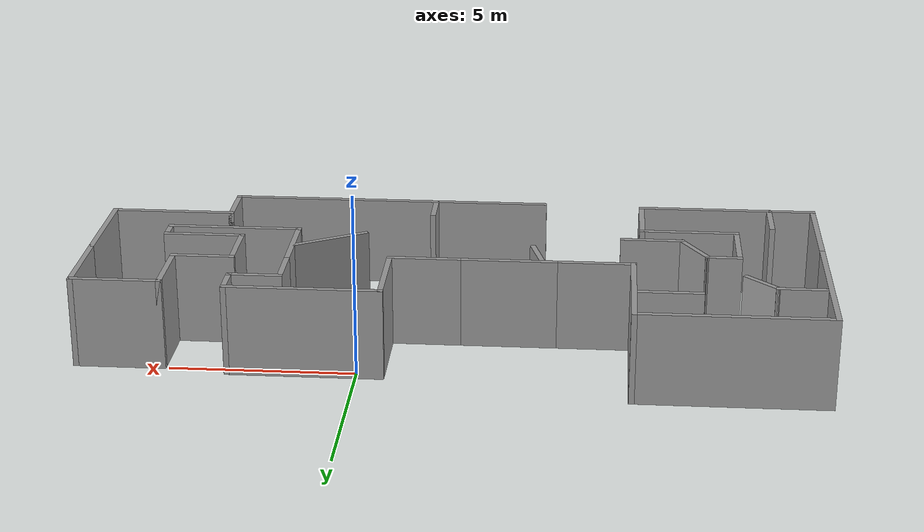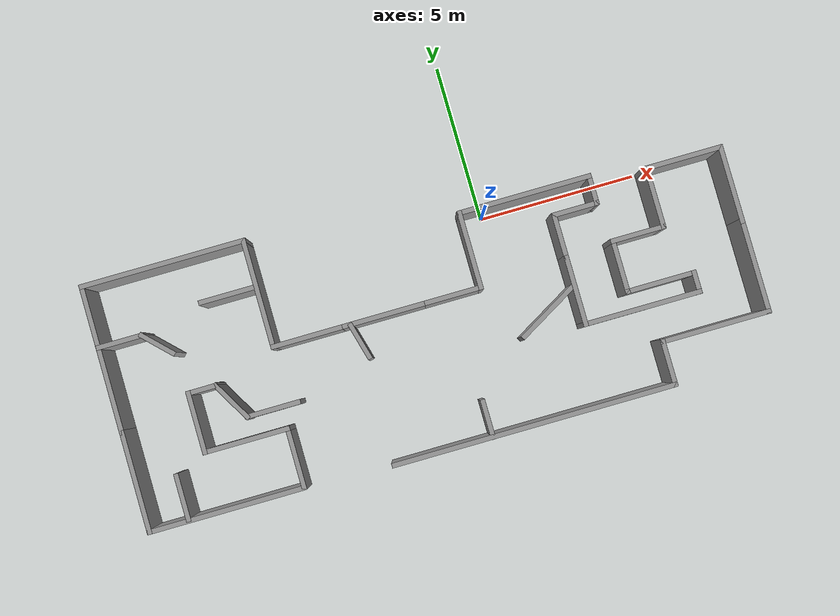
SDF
<?xml version='1.0'?>
<sdf version='1.7'>
  <model name='building_model'>
    <pose>-2.415 -2.70167 0 0 -0 0</pose>
    <link name='Wall_10'>
      <collision name='Wall_10_Collision'>
        <geometry>
          <box>
            <size>2.5 0.15 2.5</size>
          </box>
        </geometry>
        <pose>0 0 1.25 0 -0 0</pose>
      </collision>
      <visual name='Wall_10_Visual'>
        <pose>0 0 1.25 0 -0 0</pose>
        <geometry>
          <box>
            <size>2.5 0.15 2.5</size>
          </box>
        </geometry>
        <material>
          <script>
            <uri>file://media/materials/scripts/gazebo.material</uri>
            <name>Gazebo/Grey</name>
          </script>
          <ambient>1 1 1 1</ambient>
        </material>
        <meta>
          <layer>0</layer>
        </meta>
      </visual>
      <pose>8.75 2.65167 0 0 -0 3.14159</pose>
    </link>
    <link name='Wall_11'>
      <collision name='Wall_11_Collision'>
        <geometry>
          <box>
            <size>2 0.15 2.5</size>
          </box>
        </geometry>
        <pose>0 0 1.25 0 -0 0</pose>
      </collision>
      <visual name='Wall_11_Visual'>
        <pose>0 0 1.25 0 -0 0</pose>
        <geometry>
          <box>
            <size>2 0.15 2.5</size>
          </box>
        </geometry>
        <material>
          <script>
            <uri>file://media/materials/scripts/gazebo.material</uri>
            <name>Gazebo/Grey</name>
          </script>
          <ambient>1 1 1 1</ambient>
        </material>
        <meta>
          <layer>0</layer>
        </meta>
      </visual>
      <pose>7.575 1.72667 0 0 -0 -1.5708</pose>
    </link>
    <link name='Wall_12'>
      <collision name='Wall_12_Collision'>
        <geometry>
          <box>
            <size>1.75 0.15 2.5</size>
          </box>
        </geometry>
        <pose>0 0 1.25 0 -0 0</pose>
      </collision>
      <visual name='Wall_12_Visual'>
        <pose>0 0 1.25 0 -0 0</pose>
        <geometry>
          <box>
            <size>1.75 0.15 2.5</size>
          </box>
        </geometry>
        <material>
          <script>
            <uri>file://media/materials/scripts/gazebo.material</uri>
            <name>Gazebo/Grey</name>
          </script>
          <ambient>1 1 1 1</ambient>
        </material>
        <meta>
          <layer>0</layer>
        </meta>
      </visual>
      <pose>6.775 0.801673 0 0 -0 3.14159</pose>
    </link>
    <link name='Wall_13'>
      <collision name='Wall_13_Collision'>
        <geometry>
          <box>
            <size>1.75 0.15 2.5</size>
          </box>
        </geometry>
        <pose>0 0 1.25 0 -0 0</pose>
      </collision>
      <visual name='Wall_13_Visual'>
        <pose>0 0 1.25 0 -0 0</pose>
        <geometry>
          <box>
            <size>1.75 0.15 2.5</size>
          </box>
        </geometry>
        <material>
          <script>
            <uri>file://media/materials/scripts/gazebo.material</uri>
            <name>Gazebo/Grey</name>
          </script>
          <ambient>1 1 1 1</ambient>
        </material>
        <meta>
          <layer>0</layer>
        </meta>
      </visual>
      <pose>5.975 0.001673 0 0 -0 -1.5708</pose>
    </link>
    <link name='Wall_14'>
      <collision name='Wall_14_Collision'>
        <geometry>
          <box>
            <size>2.25 0.15 2.5</size>
          </box>
        </geometry>
        <pose>0 0 1.25 0 -0 0</pose>
      </collision>
      <visual name='Wall_14_Visual'>
        <pose>0 0 1.25 0 -0 0</pose>
        <geometry>
          <box>
            <size>2.25 0.15 2.5</size>
          </box>
        </geometry>
        <material>
          <script>
            <uri>file://media/materials/scripts/gazebo.material</uri>
            <name>Gazebo/Grey</name>
          </script>
          <ambient>1 1 1 1</ambient>
        </material>
        <meta>
          <layer>0</layer>
        </meta>
      </visual>
      <pose>7.025 -0.798327 0 0 -0 0</pose>
    </link>
    <link name='Wall_15'>
      <collision name='Wall_15_Collision'>
        <geometry>
          <box>
            <size>0.75 0.15 2.5</size>
          </box>
        </geometry>
        <pose>0 0 1.25 0 -0 0</pose>
      </collision>
      <visual name='Wall_15_Visual'>
        <pose>0 0 1.25 0 -0 0</pose>
        <geometry>
          <box>
            <size>0.75 0.15 2.5</size>
          </box>
        </geometry>
        <material>
          <script>
            <uri>file://media/materials/scripts/gazebo.material</uri>
            <name>Gazebo/Grey</name>
          </script>
          <ambient>1 1 1 1</ambient>
        </material>
        <meta>
          <layer>0</layer>
        </meta>
      </visual>
      <pose>8.075 -1.09833 0 0 -0 -1.5708</pose>
    </link>
    <link name='Wall_16'>
      <collision name='Wall_16_Collision'>
        <geometry>
          <box>
            <size>3.75 0.15 2.5</size>
          </box>
        </geometry>
        <pose>0 0 1.25 0 -0 0</pose>
      </collision>
      <visual name='Wall_16_Visual'>
        <pose>0 0 1.25 0 -0 0</pose>
        <geometry>
          <box>
            <size>3.75 0.15 2.5</size>
          </box>
        </geometry>
        <material>
          <script>
            <uri>file://media/materials/scripts/gazebo.material</uri>
            <name>Gazebo/Grey</name>
          </script>
          <ambient>1 1 1 1</ambient>
        </material>
        <meta>
          <layer>0</layer>
        </meta>
      </visual>
      <pose>6.275 -1.39833 0 0 -0 3.14159</pose>
    </link>
    <link name='Wall_17'>
      <collision name='Wall_17_Collision'>
        <geometry>
          <box>
            <size>2.25 0.15 2.5</size>
          </box>
        </geometry>
        <pose>0 0 1.25 0 -0 0</pose>
      </collision>
      <visual name='Wall_17_Visual'>
        <pose>0 0 1.25 0 -0 0</pose>
        <geometry>
          <box>
            <size>2.25 0.15 2.5</size>
          </box>
        </geometry>
        <material>
          <script>
            <uri>file://media/materials/scripts/gazebo.material</uri>
            <name>Gazebo/Grey</name>
          </script>
          <ambient>1 1 1 1</ambient>
        </material>
        <meta>
          <layer>0</layer>
        </meta>
      </visual>
      <pose>4.475 -0.348327 0 0 -0 1.5708</pose>
    </link>
    <link name='Wall_18'>
      <collision name='Wall_18_Collision'>
        <geometry>
          <box>
            <size>1.5 0.15 2.5</size>
          </box>
        </geometry>
        <pose>0 0 1.25 0 -0 0</pose>
      </collision>
      <visual name='Wall_18_Visual'>
        <pose>0 0 1.25 0 -0 0</pose>
        <geometry>
          <box>
            <size>1.5 0.15 2.5</size>
          </box>
        </geometry>
        <material>
          <script>
            <uri>file://media/materials/scripts/gazebo.material</uri>
            <name>Gazebo/Grey</name>
          </script>
          <ambient>1 1 1 1</ambient>
        </material>
        <meta>
          <layer>0</layer>
        </meta>
      </visual>
      <pose>4.475 1.37667 0 0 -0 1.5708</pose>
    </link>
    <link name='Wall_19'>
      <collision name='Wall_19_Collision'>
        <geometry>
          <box>
            <size>1.5 0.15 2.5</size>
          </box>
        </geometry>
        <pose>0 0 1.25 0 -0 0</pose>
      </collision>
      <visual name='Wall_19_Visual'>
        <pose>0 0 1.25 0 -0 0</pose>
        <geometry>
          <box>
            <size>1.5 0.15 2.5</size>
          </box>
        </geometry>
        <material>
          <script>
            <uri>file://media/materials/scripts/gazebo.material</uri>
            <name>Gazebo/Grey</name>
          </script>
          <ambient>1 1 1 1</ambient>
        </material>
        <meta>
          <layer>0</layer>
        </meta>
      </visual>
      <pose>5.15 2.05167 0 0 -0 0</pose>
    </link>
    <link name='Wall_20'>
      <collision name='Wall_20_Collision'>
        <geometry>
          <box>
            <size>1 0.15 2.5</size>
          </box>
        </geometry>
        <pose>0 0 1.25 0 -0 0</pose>
      </collision>
      <visual name='Wall_20_Visual'>
        <pose>0 0 1.25 0 -0 0</pose>
        <geometry>
          <box>
            <size>1 0.15 2.5</size>
          </box>
        </geometry>
        <material>
          <script>
            <uri>file://media/materials/scripts/gazebo.material</uri>
            <name>Gazebo/Grey</name>
          </script>
          <ambient>1 1 1 1</ambient>
        </material>
        <meta>
          <layer>0</layer>
        </meta>
      </visual>
      <pose>5.825 2.47667 0 0 -0 1.5708</pose>
    </link>
    <link name='Wall_21'>
      <collision name='Wall_21_Collision'>
        <geometry>
          <box>
            <size>4.25 0.15 2.5</size>
          </box>
        </geometry>
        <pose>0 0 1.25 0 -0 0</pose>
      </collision>
      <visual name='Wall_21_Visual'>
        <pose>0 0 1.25 0 -0 0</pose>
        <geometry>
          <box>
            <size>4.25 0.15 2.5</size>
          </box>
        </geometry>
        <material>
          <script>
            <uri>file://media/materials/scripts/gazebo.material</uri>
            <name>Gazebo/Grey</name>
          </script>
          <ambient>1 1 1 1</ambient>
        </material>
        <meta>
          <layer>0</layer>
        </meta>
      </visual>
      <pose>3.775 2.90167 0 0 -0 3.14159</pose>
    </link>
    <link name='Wall_22'>
      <collision name='Wall_22_Collision'>
        <geometry>
          <box>
            <size>2.5 0.15 2.5</size>
          </box>
        </geometry>
        <pose>0 0 1.25 0 -0 0</pose>
      </collision>
      <visual name='Wall_22_Visual'>
        <pose>0 0 1.25 0 -0 0</pose>
        <geometry>
          <box>
            <size>2.5 0.15 2.5</size>
          </box>
        </geometry>
        <material>
          <script>
            <uri>file://media/materials/scripts/gazebo.material</uri>
            <name>Gazebo/Grey</name>
          </script>
          <ambient>1 1 1 1</ambient>
        </material>
        <meta>
          <layer>0</layer>
        </meta>
      </visual>
      <pose>1.725 1.72667 0 0 -0 -1.5708</pose>
    </link>
    <link name='Wall_23'>
      <collision name='Wall_23_Collision'>
        <geometry>
          <box>
            <size>2 0.15 2.5</size>
          </box>
        </geometry>
        <pose>0 0 1.25 0 -0 0</pose>
      </collision>
      <visual name='Wall_23_Visual'>
        <pose>0 0 1.25 0 -0 0</pose>
        <geometry>
          <box>
            <size>2 0.15 2.5</size>
          </box>
        </geometry>
        <material>
          <script>
            <uri>file://media/materials/scripts/gazebo.material</uri>
            <name>Gazebo/Grey</name>
          </script>
          <ambient>1 1 1 1</ambient>
        </material>
        <meta>
          <layer>0</layer>
        </meta>
      </visual>
      <pose>0.8 0.551673 0 0 -0 3.14159</pose>
    </link>
    <link name='Wall_24'>
      <collision name='Wall_24_Collision'>
        <geometry>
          <box>
            <size>2.75 0.15 2.5</size>
          </box>
        </geometry>
        <pose>0 0 1.25 0 -0 0</pose>
      </collision>
      <visual name='Wall_24_Visual'>
        <pose>0 0 1.25 0 -0 0</pose>
        <geometry>
          <box>
            <size>2.75 0.15 2.5</size>
          </box>
        </geometry>
        <material>
          <script>
            <uri>file://media/materials/scripts/gazebo.material</uri>
            <name>Gazebo/Grey</name>
          </script>
          <ambient>1 1 1 1</ambient>
        </material>
        <meta>
          <layer>0</layer>
        </meta>
      </visual>
      <pose>-1.425 0.551673 0 0 -0 3.14159</pose>
    </link>
    <link name='Wall_25'>
      <collision name='Wall_25_Collision'>
        <geometry>
          <box>
            <size>2.25 0.15 2.5</size>
          </box>
        </geometry>
        <pose>0 0 1.25 0 -0 0</pose>
      </collision>
      <visual name='Wall_25_Visual'>
        <pose>0 0 1.25 0 -0 0</pose>
        <geometry>
          <box>
            <size>2.25 0.15 2.5</size>
          </box>
        </geometry>
        <material>
          <script>
            <uri>file://media/materials/scripts/gazebo.material</uri>
            <name>Gazebo/Grey</name>
          </script>
          <ambient>1 1 1 1</ambient>
        </material>
        <meta>
          <layer>0</layer>
        </meta>
      </visual>
      <pose>-3.775 0.551673 0 0 -0 3.14159</pose>
    </link>
    <link name='Wall_26'>
      <collision name='Wall_26_Collision'>
        <geometry>
          <box>
            <size>3.5 0.15 2.5</size>
          </box>
        </geometry>
        <pose>0 0 1.25 0 -0 0</pose>
      </collision>
      <visual name='Wall_26_Visual'>
        <pose>0 0 1.25 0 -0 0</pose>
        <geometry>
          <box>
            <size>3.5 0.15 2.5</size>
          </box>
        </geometry>
        <material>
          <script>
            <uri>file://media/materials/scripts/gazebo.material</uri>
            <name>Gazebo/Grey</name>
          </script>
          <ambient>1 1 1 1</ambient>
        </material>
        <meta>
          <layer>0</layer>
        </meta>
      </visual>
      <pose>-4.825 2.22667 0 0 -0 1.5708</pose>
    </link>
    <link name='Wall_27'>
      <collision name='Wall_27_Collision'>
        <geometry>
          <box>
            <size>5.25 0.15 2.5</size>
          </box>
        </geometry>
        <pose>0 0 1.25 0 -0 0</pose>
      </collision>
      <visual name='Wall_27_Visual'>
        <pose>0 0 1.25 0 -0 0</pose>
        <geometry>
          <box>
            <size>5.25 0.15 2.5</size>
          </box>
        </geometry>
        <material>
          <script>
            <uri>file://media/materials/scripts/gazebo.material</uri>
            <name>Gazebo/Grey</name>
          </script>
          <ambient>1 1 1 1</ambient>
        </material>
        <meta>
          <layer>0</layer>
        </meta>
      </visual>
      <pose>-7.375 3.90167 0 0 -0 3.14159</pose>
    </link>
    <link name='Wall_28'>
      <collision name='Wall_28_Collision'>
        <geometry>
          <box>
            <size>4.75 0.15 2.5</size>
          </box>
        </geometry>
        <pose>0 0 1.25 0 -0 0</pose>
      </collision>
      <visual name='Wall_28_Visual'>
        <pose>0 0 1.25 0 -0 0</pose>
        <geometry>
          <box>
            <size>4.75 0.15 2.5</size>
          </box>
        </geometry>
        <material>
          <script>
            <uri>file://media/materials/scripts/gazebo.material</uri>
            <name>Gazebo/Grey</name>
          </script>
          <ambient>1 1 1 1</ambient>
        </material>
        <meta>
          <layer>0</layer>
        </meta>
      </visual>
      <pose>-9.925 1.60167 0 0 -0 -1.5708</pose>
    </link>
    <link name='Wall_29'>
      <collision name='Wall_29_Collision'>
        <geometry>
          <box>
            <size>3.25 0.15 2.5</size>
          </box>
        </geometry>
        <pose>0 0 1.25 0 -0 0</pose>
      </collision>
      <visual name='Wall_29_Visual'>
        <pose>0 0 1.25 0 -0 0</pose>
        <geometry>
          <box>
            <size>3.25 0.15 2.5</size>
          </box>
        </geometry>
        <material>
          <script>
            <uri>file://media/materials/scripts/gazebo.material</uri>
            <name>Gazebo/Grey</name>
          </script>
          <ambient>1 1 1 1</ambient>
        </material>
        <meta>
          <layer>0</layer>
        </meta>
      </visual>
      <pose>-9.925 -2.24833 0 0 -0 -1.5708</pose>
    </link>
    <link name='Wall_30'>
      <collision name='Wall_30_Collision'>
        <geometry>
          <box>
            <size>5 0.15 2.5</size>
          </box>
        </geometry>
        <pose>0 0 1.25 0 -0 0</pose>
      </collision>
      <visual name='Wall_30_Visual'>
        <pose>0 0 1.25 0 -0 0</pose>
        <geometry>
          <box>
            <size>5 0.15 2.5</size>
          </box>
        </geometry>
        <material>
          <script>
            <uri>file://media/materials/scripts/gazebo.material</uri>
            <name>Gazebo/Grey</name>
          </script>
          <ambient>1 1 1 1</ambient>
        </material>
        <meta>
          <layer>0</layer>
        </meta>
      </visual>
      <pose>-7.5 -3.79833 0 0 -0 0</pose>
    </link>
    <link name='Wall_31'>
      <collision name='Wall_31_Collision'>
        <geometry>
          <box>
            <size>2 0.15 2.5</size>
          </box>
        </geometry>
        <pose>0 0 1.25 0 -0 0</pose>
      </collision>
      <visual name='Wall_31_Visual'>
        <pose>0 0 1.25 0 -0 0</pose>
        <geometry>
          <box>
            <size>2 0.15 2.5</size>
          </box>
        </geometry>
        <material>
          <script>
            <uri>file://media/materials/scripts/gazebo.material</uri>
            <name>Gazebo/Grey</name>
          </script>
          <ambient>1 1 1 1</ambient>
        </material>
        <meta>
          <layer>0</layer>
        </meta>
      </visual>
      <pose>-5.075 -2.87333 0 0 -0 1.5708</pose>
    </link>
    <link name='Wall_32'>
      <collision name='Wall_32_Collision'>
        <geometry>
          <box>
            <size>2.75 0.15 2.5</size>
          </box>
        </geometry>
        <pose>0 0 1.25 0 -0 0</pose>
      </collision>
      <visual name='Wall_32_Visual'>
        <pose>0 0 1.25 0 -0 0</pose>
        <geometry>
          <box>
            <size>2.75 0.15 2.5</size>
          </box>
        </geometry>
        <material>
          <script>
            <uri>file://media/materials/scripts/gazebo.material</uri>
            <name>Gazebo/Grey</name>
          </script>
          <ambient>1 1 1 1</ambient>
        </material>
        <meta>
          <layer>0</layer>
        </meta>
      </visual>
      <pose>-6.375 -1.94833 0 0 -0 3.14159</pose>
    </link>
    <link name='Wall_33'>
      <collision name='Wall_33_Collision'>
        <geometry>
          <box>
            <size>2 0.15 2.5</size>
          </box>
        </geometry>
        <pose>0 0 1.25 0 -0 0</pose>
      </collision>
      <visual name='Wall_33_Visual'>
        <pose>0 0 1.25 0 -0 0</pose>
        <geometry>
          <box>
            <size>2 0.15 2.5</size>
          </box>
        </geometry>
        <material>
          <script>
            <uri>file://media/materials/scripts/gazebo.material</uri>
            <name>Gazebo/Grey</name>
          </script>
          <ambient>1 1 1 1</ambient>
        </material>
        <meta>
          <layer>0</layer>
        </meta>
      </visual>
      <pose>-7.675 -1.02333 0 0 -0 1.5708</pose>
    </link>
    <link name='Wall_34'>
      <collision name='Wall_34_Collision'>
        <geometry>
          <box>
            <size>1 0.15 2.5</size>
          </box>
        </geometry>
        <pose>0 0 1.25 0 -0 0</pose>
      </collision>
      <visual name='Wall_34_Visual'>
        <pose>0 0 1.25 0 -0 0</pose>
        <geometry>
          <box>
            <size>1 0.15 2.5</size>
          </box>
        </geometry>
        <material>
          <script>
            <uri>file://media/materials/scripts/gazebo.material</uri>
            <name>Gazebo/Grey</name>
          </script>
          <ambient>1 1 1 1</ambient>
        </material>
        <meta>
          <layer>0</layer>
        </meta>
      </visual>
      <pose>-7.25 -0.098327 0 0 -0 0</pose>
    </link>
    <link name='Wall_35'>
      <collision name='Wall_35_Collision'>
        <geometry>
          <box>
            <size>1.5 0.15 2.5</size>
          </box>
        </geometry>
        <pose>0 0 1.25 0 -0 0</pose>
      </collision>
      <visual name='Wall_35_Visual'>
        <pose>0 0 1.25 0 -0 0</pose>
        <geometry>
          <box>
            <size>1.5 0.15 2.5</size>
          </box>
        </geometry>
        <material>
          <script>
            <uri>file://media/materials/scripts/gazebo.material</uri>
            <name>Gazebo/Grey</name>
          </script>
          <ambient>1 1 1 1</ambient>
        </material>
        <meta>
          <layer>0</layer>
        </meta>
      </visual>
      <pose>-6.4875 -0.682894 0 0 -0 -1.0472</pose>
    </link>
    <link name='Wall_36'>
      <collision name='Wall_36_Collision'>
        <geometry>
          <box>
            <size>1.75 0.15 2.5</size>
          </box>
        </geometry>
        <pose>0 0 1.25 0 -0 0</pose>
      </collision>
      <visual name='Wall_36_Visual'>
        <pose>0 0 1.25 0 -0 0</pose>
        <geometry>
          <box>
            <size>1.75 0.15 2.5</size>
          </box>
        </geometry>
        <material>
          <script>
            <uri>file://media/materials/scripts/gazebo.material</uri>
            <name>Gazebo/Grey</name>
          </script>
          <ambient>1 1 1 1</ambient>
        </material>
        <meta>
          <layer>0</layer>
        </meta>
      </visual>
      <pose>-5.35 -1.26746 0 0 -0 0</pose>
    </link>
    <link name='Wall_38'>
      <collision name='Wall_38_Collision'>
        <geometry>
          <box>
            <size>1.25 0.15 2.5</size>
          </box>
        </geometry>
        <pose>0 0 1.25 0 -0 0</pose>
      </collision>
      <visual name='Wall_38_Visual'>
        <pose>0 0 1.25 0 -0 0</pose>
        <geometry>
          <box>
            <size>1.25 0.15 2.5</size>
          </box>
        </geometry>
        <material>
          <script>
            <uri>file://media/materials/scripts/gazebo.material</uri>
            <name>Gazebo/Grey</name>
          </script>
          <ambient>1 1 1 1</ambient>
        </material>
        <meta>
          <layer>0</layer>
        </meta>
      </visual>
      <pose>0.829393 -3.35167 0 0 -0 1.5708</pose>
    </link>
    <link name='Wall_4'>
      <collision name='Wall_4_Collision'>
        <geometry>
          <box>
            <size>9 0.15 2.5</size>
          </box>
        </geometry>
        <pose>0 0 1.25 0 -0 0</pose>
      </collision>
      <visual name='Wall_4_Visual'>
        <pose>0 0 1.25 0 -0 0</pose>
        <geometry>
          <box>
            <size>9 0.15 2.5</size>
          </box>
        </geometry>
        <material>
          <script>
            <uri>file://media/materials/scripts/gazebo.material</uri>
            <name>Gazebo/Grey</name>
          </script>
          <ambient>1 1 1 1</ambient>
        </material>
        <meta>
          <layer>0</layer>
        </meta>
      </visual>
      <pose>2.15 -3.89833 0 0 -0 3.14159</pose>
    </link>
    <link name='Wall_40'>
      <collision name='Wall_40_Collision'>
        <geometry>
          <box>
            <size>1.25 0.15 2.5</size>
          </box>
        </geometry>
        <pose>0 0 1.25 0 -0 0</pose>
      </collision>
      <visual name='Wall_40_Visual'>
        <pose>0 0 1.25 0 -0 0</pose>
        <geometry>
          <box>
            <size>1.25 0.15 2.5</size>
          </box>
        </geometry>
        <material>
          <script>
            <uri>file://media/materials/scripts/gazebo.material</uri>
            <name>Gazebo/Grey</name>
          </script>
          <ambient>1 1 1 1</ambient>
        </material>
        <meta>
          <layer>0</layer>
        </meta>
      </visual>
      <pose>-2.24458 -0.010492 0 0 -0 -1.309</pose>
    </link>
    <link name='Wall_42'>
      <collision name='Wall_42_Collision'>
        <geometry>
          <box>
            <size>1.5 0.15 2.5</size>
          </box>
        </geometry>
        <pose>0 0 1.25 0 -0 0</pose>
      </collision>
      <visual name='Wall_42_Visual'>
        <pose>0 0 1.25 0 -0 0</pose>
        <geometry>
          <box>
            <size>1.5 0.15 2.5</size>
          </box>
        </geometry>
        <material>
          <script>
            <uri>file://media/materials/scripts/gazebo.material</uri>
            <name>Gazebo/Grey</name>
          </script>
          <ambient>1 1 1 1</ambient>
        </material>
        <meta>
          <layer>0</layer>
        </meta>
      </visual>
      <pose>-9.24489 1.98081 0 0 -0 0</pose>
    </link>
    <link name='Wall_43'>
      <collision name='Wall_43_Collision'>
        <geometry>
          <box>
            <size>1.25 0.15 2.5</size>
          </box>
        </geometry>
        <pose>0 0 1.25 0 -0 0</pose>
      </collision>
      <visual name='Wall_43_Visual'>
        <pose>0 0 1.25 0 -0 0</pose>
        <geometry>
          <box>
            <size>1.25 0.15 2.5</size>
          </box>
        </geometry>
        <material>
          <script>
            <uri>file://media/materials/scripts/gazebo.material</uri>
            <name>Gazebo/Grey</name>
          </script>
          <ambient>1 1 1 1</ambient>
        </material>
        <meta>
          <layer>0</layer>
        </meta>
      </visual>
      <pose>-8.18098 1.5919 0 0 -0 -0.785398</pose>
    </link>
    <link name='Wall_45'>
      <collision name='Wall_45_Collision'>
        <geometry>
          <box>
            <size>1.5 0.15 2.5</size>
          </box>
        </geometry>
        <pose>0 0 1.25 0 -0 0</pose>
      </collision>
      <visual name='Wall_45_Visual'>
        <pose>0 0 1.25 0 -0 0</pose>
        <geometry>
          <box>
            <size>1.5 0.15 2.5</size>
          </box>
        </geometry>
        <material>
          <script>
            <uri>file://media/materials/scripts/gazebo.material</uri>
            <name>Gazebo/Grey</name>
          </script>
          <ambient>1 1 1 1</ambient>
        </material>
        <meta>
          <layer>0</layer>
        </meta>
      </visual>
      <pose>-8.69261 -3.07855 0 0 -0 1.5708</pose>
    </link>
    <link name='Wall_47'>
      <collision name='Wall_47_Collision'>
        <geometry>
          <box>
            <size>1.75 0.15 2.5</size>
          </box>
        </geometry>
        <pose>0 0 1.25 0 -0 0</pose>
      </collision>
      <visual name='Wall_47_Visual'>
        <pose>0 0 1.25 0 -0 0</pose>
        <geometry>
          <box>
            <size>1.75 0.15 2.5</size>
          </box>
        </geometry>
        <material>
          <script>
            <uri>file://media/materials/scripts/gazebo.material</uri>
            <name>Gazebo/Grey</name>
          </script>
          <ambient>1 1 1 1</ambient>
        </material>
        <meta>
          <layer>0</layer>
        </meta>
      </visual>
      <pose>-5.76845 2.44633 0 0 -0 3.14159</pose>
    </link>
    <link name='Wall_49'>
      <collision name='Wall_49_Collision'>
        <geometry>
          <box>
            <size>2.25 0.15 2.5</size>
          </box>
        </geometry>
        <pose>0 0 1.25 0 -0 0</pose>
      </collision>
      <visual name='Wall_49_Visual'>
        <pose>0 0 1.25 0 -0 0</pose>
        <geometry>
          <box>
            <size>2.25 0.15 2.5</size>
          </box>
        </geometry>
        <material>
          <script>
            <uri>file://media/materials/scripts/gazebo.material</uri>
            <name>Gazebo/Grey</name>
          </script>
          <ambient>1 1 1 1</ambient>
        </material>
        <meta>
          <layer>0</layer>
        </meta>
      </visual>
      <pose>3.49611 -0.723673 0 0 -0 -2.61799</pose>
    </link>
    <link name='Wall_6'>
      <collision name='Wall_6_Collision'>
        <geometry>
          <box>
            <size>1.5 0.15 2.5</size>
          </box>
        </geometry>
        <pose>0 0 1.25 0 -0 0</pose>
      </collision>
      <visual name='Wall_6_Visual'>
        <pose>0 0 1.25 0 -0 0</pose>
        <geometry>
          <box>
            <size>1.5 0.15 2.5</size>
          </box>
        </geometry>
        <material>
          <script>
            <uri>file://media/materials/scripts/gazebo.material</uri>
            <name>Gazebo/Grey</name>
          </script>
          <ambient>1 1 1 1</ambient>
        </material>
        <meta>
          <layer>0</layer>
        </meta>
      </visual>
      <pose>6.575 -3.22333 0 0 -0 1.5708</pose>
    </link>
    <link name='Wall_7'>
      <collision name='Wall_7_Collision'>
        <geometry>
          <box>
            <size>3.5 0.15 2.5</size>
          </box>
        </geometry>
        <pose>0 0 1.25 0 -0 0</pose>
      </collision>
      <visual name='Wall_7_Visual'>
        <pose>0 0 1.25 0 -0 0</pose>
        <geometry>
          <box>
            <size>3.5 0.15 2.5</size>
          </box>
        </geometry>
        <material>
          <script>
            <uri>file://media/materials/scripts/gazebo.material</uri>
            <name>Gazebo/Grey</name>
          </script>
          <ambient>1 1 1 1</ambient>
        </material>
        <meta>
          <layer>0</layer>
        </meta>
      </visual>
      <pose>8.25 -2.54833 0 0 -0 0</pose>
    </link>
    <link name='Wall_8'>
      <collision name='Wall_8_Collision'>
        <geometry>
          <box>
            <size>3 0.15 2.5</size>
          </box>
        </geometry>
        <pose>0 0 1.25 0 -0 0</pose>
      </collision>
      <visual name='Wall_8_Visual'>
        <pose>0 0 1.25 0 -0 0</pose>
        <geometry>
          <box>
            <size>3 0.15 2.5</size>
          </box>
        </geometry>
        <material>
          <script>
            <uri>file://media/materials/scripts/gazebo.material</uri>
            <name>Gazebo/Grey</name>
          </script>
          <ambient>1 1 1 1</ambient>
        </material>
        <meta>
          <layer>0</layer>
        </meta>
      </visual>
      <pose>9.925 -1.12333 0 0 -0 1.5708</pose>
    </link>
    <link name='Wall_9'>
      <collision name='Wall_9_Collision'>
        <geometry>
          <box>
            <size>2.5 0.15 2.5</size>
          </box>
        </geometry>
        <pose>0 0 1.25 0 -0 0</pose>
      </collision>
      <visual name='Wall_9_Visual'>
        <pose>0 0 1.25 0 -0 0</pose>
        <geometry>
          <box>
            <size>2.5 0.15 2.5</size>
          </box>
        </geometry>
        <material>
          <script>
            <uri>file://media/materials/scripts/gazebo.material</uri>
            <name>Gazebo/Grey</name>
          </script>
          <ambient>1 1 1 1</ambient>
        </material>
        <meta>
          <layer>0</layer>
        </meta>
      </visual>
      <pose>9.925 1.47667 0 0 -0 1.5708</pose>
    </link>
    <static>1</static>
  </model>
</sdf>
